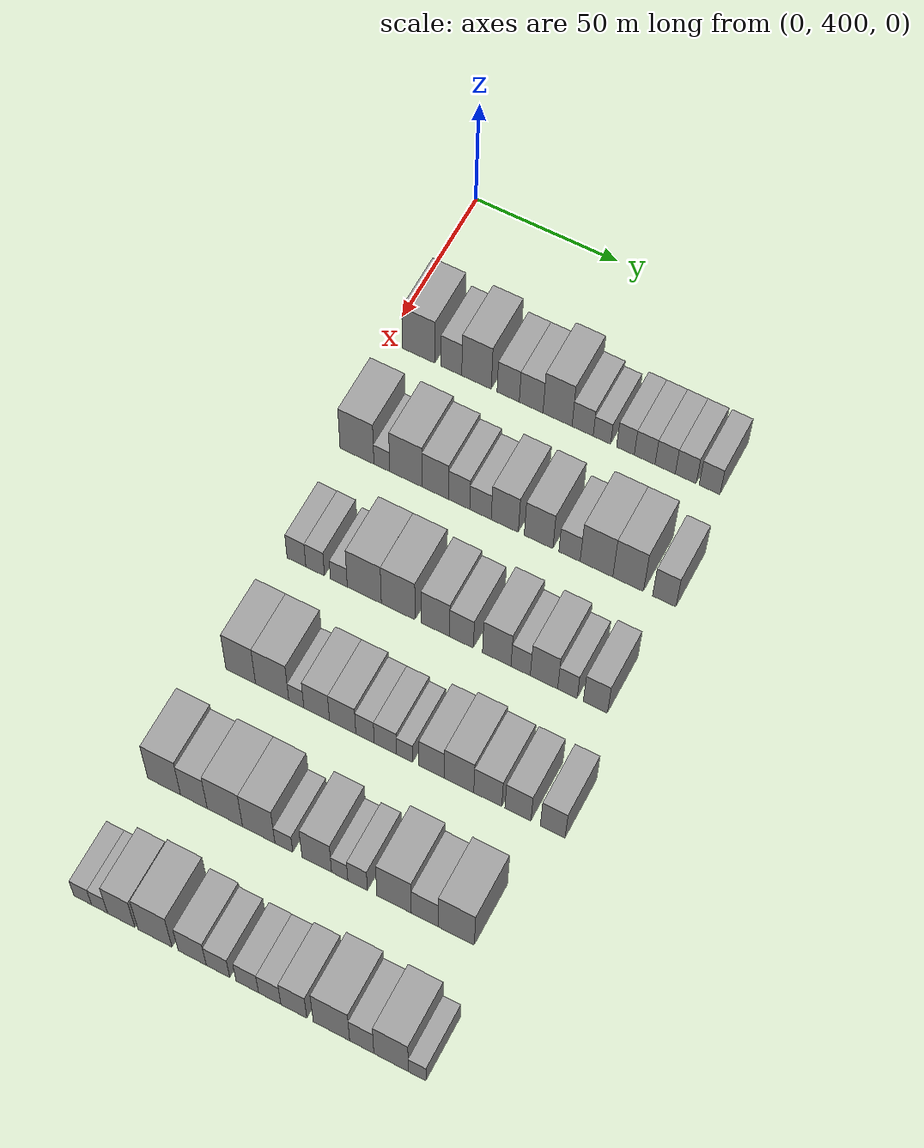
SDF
<sdf version="1.6">
 <world name="default">
  <model name="building_118">
   <static>1</static>
   <pose>50.0000 411.1367 0 0.000000 0.000000 0.000000</pose>
   <link name="link">
    <pose>0 0 12.00 0 0 0</pose>
    <collision name="collision"><geometry><box><size>20.0000 11.4746 24.0000</size></box></geometry></collision>
    <visual name="visual">
     <cast_shadows>0</cast_shadows>
     <geometry><box><size>20.0000 11.4746 24.0000</size></box></geometry>
     <material>
      <script>
       <uri>model://grey_wall/materials/scripts</uri>
       <uri>model://grey_wall/materials/textures</uri>
       <name>vrc/grey_wall</name>
      </script>
     </material>
    </visual>
   </link>
  </model>
  <model name="building_119">
   <static>1</static>
   <pose>50.0000 422.5371 0 0.000000 0.000000 0.000000</pose>
   <link name="link">
    <pose>0 0 9.00 0 0 0</pose>
    <collision name="collision"><geometry><box><size>20.0000 7.3262 18.0000</size></box></geometry></collision>
    <visual name="visual">
     <cast_shadows>0</cast_shadows>
     <geometry><box><size>20.0000 7.3262 18.0000</size></box></geometry>
     <material>
      <script>
       <uri>model://grey_wall/materials/scripts</uri>
       <uri>model://grey_wall/materials/textures</uri>
       <name>vrc/grey_wall</name>
      </script>
     </material>
    </visual>
   </link>
  </model>
  <model name="building_120">
   <static>1</static>
   <pose>50.0000 431.3354 0 0.000000 0.000000 0.000000</pose>
   <link name="link">
    <pose>0 0 12.00 0 0 0</pose>
    <collision name="collision"><geometry><box><size>20.0000 10.2705 24.0000</size></box></geometry></collision>
    <visual name="visual">
     <cast_shadows>0</cast_shadows>
     <geometry><box><size>20.0000 10.2705 24.0000</size></box></geometry>
     <material>
      <script>
       <uri>model://grey_wall/materials/scripts</uri>
       <uri>model://grey_wall/materials/textures</uri>
       <name>vrc/grey_wall</name>
      </script>
     </material>
    </visual>
   </link>
  </model>
  <model name="building_121">
   <static>1</static>
   <pose>50.0000 442.3134 0 0.000000 0.000000 0.000000</pose>
   <link name="link">
    <pose>0 0 9.00 0 0 0</pose>
    <collision name="collision"><geometry><box><size>20.0000 7.6854 18.0000</size></box></geometry></collision>
    <visual name="visual">
     <cast_shadows>0</cast_shadows>
     <geometry><box><size>20.0000 7.6854 18.0000</size></box></geometry>
     <material>
      <script>
       <uri>model://grey_wall/materials/scripts</uri>
       <uri>model://grey_wall/materials/textures</uri>
       <name>vrc/grey_wall</name>
      </script>
     </material>
    </visual>
   </link>
  </model>
  <model name="building_122">
   <static>1</static>
   <pose>50.0000 450.2331 0 0.000000 0.000000 0.000000</pose>
   <link name="link">
    <pose>0 0 9.00 0 0 0</pose>
    <collision name="collision"><geometry><box><size>20.0000 8.1539 18.0000</size></box></geometry></collision>
    <visual name="visual">
     <cast_shadows>0</cast_shadows>
     <geometry><box><size>20.0000 8.1539 18.0000</size></box></geometry>
     <material>
      <script>
       <uri>model://grey_wall/materials/scripts</uri>
       <uri>model://grey_wall/materials/textures</uri>
       <name>vrc/grey_wall</name>
      </script>
     </material>
    </visual>
   </link>
  </model>
  <model name="building_123">
   <static>1</static>
   <pose>50.0000 459.2858 0 0.000000 0.000000 0.000000</pose>
   <link name="link">
    <pose>0 0 12.00 0 0 0</pose>
    <collision name="collision"><geometry><box><size>20.0000 9.9516 24.0000</size></box></geometry></collision>
    <visual name="visual">
     <cast_shadows>0</cast_shadows>
     <geometry><box><size>20.0000 9.9516 24.0000</size></box></geometry>
     <material>
      <script>
       <uri>model://grey_wall/materials/scripts</uri>
       <uri>model://grey_wall/materials/textures</uri>
       <name>vrc/grey_wall</name>
      </script>
     </material>
    </visual>
   </link>
  </model>
  <model name="building_124">
   <static>1</static>
   <pose>50.0000 467.8627 0 0.000000 0.000000 0.000000</pose>
   <link name="link">
    <pose>0 0 7.50 0 0 0</pose>
    <collision name="collision"><geometry><box><size>20.0000 7.2021 15.0000</size></box></geometry></collision>
    <visual name="visual">
     <cast_shadows>0</cast_shadows>
     <geometry><box><size>20.0000 7.2021 15.0000</size></box></geometry>
     <material>
      <script>
       <uri>model://grey_wall/materials/scripts</uri>
       <uri>model://grey_wall/materials/textures</uri>
       <name>vrc/grey_wall</name>
      </script>
     </material>
    </visual>
   </link>
  </model>
  <model name="building_125">
   <static>1</static>
   <pose>50.0000 474.4332 0 0.000000 0.000000 0.000000</pose>
   <link name="link">
    <pose>0 0 6.00 0 0 0</pose>
    <collision name="collision"><geometry><box><size>20.0000 5.9390 12.0000</size></box></geometry></collision>
    <visual name="visual">
     <cast_shadows>0</cast_shadows>
     <geometry><box><size>20.0000 5.9390 12.0000</size></box></geometry>
     <material>
      <script>
       <uri>model://grey_wall/materials/scripts</uri>
       <uri>model://grey_wall/materials/textures</uri>
       <name>vrc/grey_wall</name>
      </script>
     </material>
    </visual>
   </link>
  </model>
  <model name="building_126">
   <static>1</static>
   <pose>50.0000 482.4028 0 0.000000 0.000000 0.000000</pose>
   <link name="link">
    <pose>0 0 7.50 0 0 0</pose>
    <collision name="collision"><geometry><box><size>20.0000 6.0003 15.0000</size></box></geometry></collision>
    <visual name="visual">
     <cast_shadows>0</cast_shadows>
     <geometry><box><size>20.0000 6.0003 15.0000</size></box></geometry>
     <material>
      <script>
       <uri>model://grey_wall/materials/scripts</uri>
       <uri>model://grey_wall/materials/textures</uri>
       <name>vrc/grey_wall</name>
      </script>
     </material>
    </visual>
   </link>
  </model>
  <model name="building_127">
   <static>1</static>
   <pose>50.0000 488.8946 0 0.000000 0.000000 0.000000</pose>
   <link name="link">
    <pose>0 0 7.50 0 0 0</pose>
    <collision name="collision"><geometry><box><size>20.0000 6.9833 15.0000</size></box></geometry></collision>
    <visual name="visual">
     <cast_shadows>0</cast_shadows>
     <geometry><box><size>20.0000 6.9833 15.0000</size></box></geometry>
     <material>
      <script>
       <uri>model://grey_wall/materials/scripts</uri>
       <uri>model://grey_wall/materials/textures</uri>
       <name>vrc/grey_wall</name>
      </script>
     </material>
    </visual>
   </link>
  </model>
  <model name="building_128">
   <static>1</static>
   <pose>50.0000 495.7840 0 0.000000 0.000000 0.000000</pose>
   <link name="link">
    <pose>0 0 7.50 0 0 0</pose>
    <collision name="collision"><geometry><box><size>20.0000 6.7955 15.0000</size></box></geometry></collision>
    <visual name="visual">
     <cast_shadows>0</cast_shadows>
     <geometry><box><size>20.0000 6.7955 15.0000</size></box></geometry>
     <material>
      <script>
       <uri>model://grey_wall/materials/scripts</uri>
       <uri>model://grey_wall/materials/textures</uri>
       <name>vrc/grey_wall</name>
      </script>
     </material>
    </visual>
   </link>
  </model>
  <model name="building_129">
   <static>1</static>
   <pose>50.0000 502.6778 0 0.000000 0.000000 0.000000</pose>
   <link name="link">
    <pose>0 0 7.50 0 0 0</pose>
    <collision name="collision"><geometry><box><size>20.0000 6.9922 15.0000</size></box></geometry></collision>
    <visual name="visual">
     <cast_shadows>0</cast_shadows>
     <geometry><box><size>20.0000 6.9922 15.0000</size></box></geometry>
     <material>
      <script>
       <uri>model://grey_wall/materials/scripts</uri>
       <uri>model://grey_wall/materials/textures</uri>
       <name>vrc/grey_wall</name>
      </script>
     </material>
    </visual>
   </link>
  </model>
  <model name="building_130">
   <static>1</static>
   <pose>50.0000 510.6487 0 0.000000 0.000000 0.000000</pose>
   <link name="link">
    <pose>0 0 7.50 0 0 0</pose>
    <collision name="collision"><geometry><box><size>20.0000 6.9495 15.0000</size></box></geometry></collision>
    <visual name="visual">
     <cast_shadows>0</cast_shadows>
     <geometry><box><size>20.0000 6.9495 15.0000</size></box></geometry>
     <material>
      <script>
       <uri>model://grey_wall/materials/scripts</uri>
       <uri>model://grey_wall/materials/textures</uri>
       <name>vrc/grey_wall</name>
      </script>
     </material>
    </visual>
   </link>
  </model>
  <model name="building_258">
   <static>1</static>
   <pose>90.0000 411.3730 0 0.000000 0.000000 0.000000</pose>
   <link name="link">
    <pose>0 0 12.00 0 0 0</pose>
    <collision name="collision"><geometry><box><size>20.0000 11.7048 24.0000</size></box></geometry></collision>
    <visual name="visual">
     <cast_shadows>0</cast_shadows>
     <geometry><box><size>20.0000 11.7048 24.0000</size></box></geometry>
     <material>
      <script>
       <uri>model://grey_wall/materials/scripts</uri>
       <uri>model://grey_wall/materials/textures</uri>
       <name>vrc/grey_wall</name>
      </script>
     </material>
    </visual>
   </link>
  </model>
  <model name="building_259">
   <static>1</static>
   <pose>90.0000 419.9454 0 0.000000 0.000000 0.000000</pose>
   <link name="link">
    <pose>0 0 6.00 0 0 0</pose>
    <collision name="collision"><geometry><box><size>20.0000 5.4400 12.0000</size></box></geometry></collision>
    <visual name="visual">
     <cast_shadows>0</cast_shadows>
     <geometry><box><size>20.0000 5.4400 12.0000</size></box></geometry>
     <material>
      <script>
       <uri>model://grey_wall/materials/scripts</uri>
       <uri>model://grey_wall/materials/textures</uri>
       <name>vrc/grey_wall</name>
      </script>
     </material>
    </visual>
   </link>
  </model>
  <model name="building_260">
   <static>1</static>
   <pose>90.0000 428.1868 0 0.000000 0.000000 0.000000</pose>
   <link name="link">
    <pose>0 0 12.00 0 0 0</pose>
    <collision name="collision"><geometry><box><size>20.0000 11.0427 24.0000</size></box></geometry></collision>
    <visual name="visual">
     <cast_shadows>0</cast_shadows>
     <geometry><box><size>20.0000 11.0427 24.0000</size></box></geometry>
     <material>
      <script>
       <uri>model://grey_wall/materials/scripts</uri>
       <uri>model://grey_wall/materials/textures</uri>
       <name>vrc/grey_wall</name>
      </script>
     </material>
    </visual>
   </link>
  </model>
  <model name="building_261">
   <static>1</static>
   <pose>90.0000 438.2460 0 0.000000 0.000000 0.000000</pose>
   <link name="link">
    <pose>0 0 10.50 0 0 0</pose>
    <collision name="collision"><geometry><box><size>20.0000 9.0757 21.0000</size></box></geometry></collision>
    <visual name="visual">
     <cast_shadows>0</cast_shadows>
     <geometry><box><size>20.0000 9.0757 21.0000</size></box></geometry>
     <material>
      <script>
       <uri>model://grey_wall/materials/scripts</uri>
       <uri>model://grey_wall/materials/textures</uri>
       <name>vrc/grey_wall</name>
      </script>
     </material>
    </visual>
   </link>
  </model>
  <model name="building_262">
   <static>1</static>
   <pose>90.0000 446.3925 0 0.000000 0.000000 0.000000</pose>
   <link name="link">
    <pose>0 0 9.00 0 0 0</pose>
    <collision name="collision"><geometry><box><size>20.0000 7.2173 18.0000</size></box></geometry></collision>
    <visual name="visual">
     <cast_shadows>0</cast_shadows>
     <geometry><box><size>20.0000 7.2173 18.0000</size></box></geometry>
     <material>
      <script>
       <uri>model://grey_wall/materials/scripts</uri>
       <uri>model://grey_wall/materials/textures</uri>
       <name>vrc/grey_wall</name>
      </script>
     </material>
    </visual>
   </link>
  </model>
  <model name="building_263">
   <static>1</static>
   <pose>90.0000 453.6356 0 0.000000 0.000000 0.000000</pose>
   <link name="link">
    <pose>0 0 7.50 0 0 0</pose>
    <collision name="collision"><geometry><box><size>20.0000 7.2689 15.0000</size></box></geometry></collision>
    <visual name="visual">
     <cast_shadows>0</cast_shadows>
     <geometry><box><size>20.0000 7.2689 15.0000</size></box></geometry>
     <material>
      <script>
       <uri>model://grey_wall/materials/scripts</uri>
       <uri>model://grey_wall/materials/textures</uri>
       <name>vrc/grey_wall</name>
      </script>
     </material>
    </visual>
   </link>
  </model>
  <model name="building_264">
   <static>1</static>
   <pose>90.0000 461.8416 0 0.000000 0.000000 0.000000</pose>
   <link name="link">
    <pose>0 0 10.50 0 0 0</pose>
    <collision name="collision"><geometry><box><size>20.0000 9.1431 21.0000</size></box></geometry></collision>
    <visual name="visual">
     <cast_shadows>0</cast_shadows>
     <geometry><box><size>20.0000 9.1431 21.0000</size></box></geometry>
     <material>
      <script>
       <uri>model://grey_wall/materials/scripts</uri>
       <uri>model://grey_wall/materials/textures</uri>
       <name>vrc/grey_wall</name>
      </script>
     </material>
    </visual>
   </link>
  </model>
  <model name="building_265">
   <static>1</static>
   <pose>90.0000 473.2131 0 0.000000 0.000000 0.000000</pose>
   <link name="link">
    <pose>0 0 10.50 0 0 0</pose>
    <collision name="collision"><geometry><box><size>20.0000 9.5998 21.0000</size></box></geometry></collision>
    <visual name="visual">
     <cast_shadows>0</cast_shadows>
     <geometry><box><size>20.0000 9.5998 21.0000</size></box></geometry>
     <material>
      <script>
       <uri>model://grey_wall/materials/scripts</uri>
       <uri>model://grey_wall/materials/textures</uri>
       <name>vrc/grey_wall</name>
      </script>
     </material>
    </visual>
   </link>
  </model>
  <model name="building_266">
   <static>1</static>
   <pose>90.0000 483.5444 0 0.000000 0.000000 0.000000</pose>
   <link name="link">
    <pose>0 0 7.50 0 0 0</pose>
    <collision name="collision"><geometry><box><size>20.0000 7.0628 15.0000</size></box></geometry></collision>
    <visual name="visual">
     <cast_shadows>0</cast_shadows>
     <geometry><box><size>20.0000 7.0628 15.0000</size></box></geometry>
     <material>
      <script>
       <uri>model://grey_wall/materials/scripts</uri>
       <uri>model://grey_wall/materials/textures</uri>
       <name>vrc/grey_wall</name>
      </script>
     </material>
    </visual>
   </link>
  </model>
  <model name="building_267">
   <static>1</static>
   <pose>90.0000 492.4960 0 0.000000 0.000000 0.000000</pose>
   <link name="link">
    <pose>0 0 12.00 0 0 0</pose>
    <collision name="collision"><geometry><box><size>20.0000 10.8405 24.0000</size></box></geometry></collision>
    <visual name="visual">
     <cast_shadows>0</cast_shadows>
     <geometry><box><size>20.0000 10.8405 24.0000</size></box></geometry>
     <material>
      <script>
       <uri>model://grey_wall/materials/scripts</uri>
       <uri>model://grey_wall/materials/textures</uri>
       <name>vrc/grey_wall</name>
      </script>
     </material>
    </visual>
   </link>
  </model>
  <model name="building_268">
   <static>1</static>
   <pose>90.0000 502.9726 0 0.000000 0.000000 0.000000</pose>
   <link name="link">
    <pose>0 0 12.00 0 0 0</pose>
    <collision name="collision"><geometry><box><size>20.0000 10.1127 24.0000</size></box></geometry></collision>
    <visual name="visual">
     <cast_shadows>0</cast_shadows>
     <geometry><box><size>20.0000 10.1127 24.0000</size></box></geometry>
     <material>
      <script>
       <uri>model://grey_wall/materials/scripts</uri>
       <uri>model://grey_wall/materials/textures</uri>
       <name>vrc/grey_wall</name>
      </script>
     </material>
    </visual>
   </link>
  </model>
  <model name="building_269">
   <static>1</static>
   <pose>90.0000 514.8615 0 0.000000 0.000000 0.000000</pose>
   <link name="link">
    <pose>0 0 9.00 0 0 0</pose>
    <collision name="collision"><geometry><box><size>20.0000 7.6652 18.0000</size></box></geometry></collision>
    <visual name="visual">
     <cast_shadows>0</cast_shadows>
     <geometry><box><size>20.0000 7.6652 18.0000</size></box></geometry>
     <material>
      <script>
       <uri>model://grey_wall/materials/scripts</uri>
       <uri>model://grey_wall/materials/textures</uri>
       <name>vrc/grey_wall</name>
      </script>
     </material>
    </visual>
   </link>
  </model>
  <model name="building_386">
   <static>1</static>
   <pose>130.0000 412.8535 0 0.000000 0.000000 0.000000</pose>
   <link name="link">
    <pose>0 0 7.50 0 0 0</pose>
    <collision name="collision"><geometry><box><size>20.0000 6.3970 15.0000</size></box></geometry></collision>
    <visual name="visual">
     <cast_shadows>0</cast_shadows>
     <geometry><box><size>20.0000 6.3970 15.0000</size></box></geometry>
     <material>
      <script>
       <uri>model://grey_wall/materials/scripts</uri>
       <uri>model://grey_wall/materials/textures</uri>
       <name>vrc/grey_wall</name>
      </script>
     </material>
    </visual>
   </link>
  </model>
  <model name="building_387">
   <static>1</static>
   <pose>130.0000 419.2220 0 0.000000 0.000000 0.000000</pose>
   <link name="link">
    <pose>0 0 7.50 0 0 0</pose>
    <collision name="collision"><geometry><box><size>20.0000 6.3401 15.0000</size></box></geometry></collision>
    <visual name="visual">
     <cast_shadows>0</cast_shadows>
     <geometry><box><size>20.0000 6.3401 15.0000</size></box></geometry>
     <material>
      <script>
       <uri>model://grey_wall/materials/scripts</uri>
       <uri>model://grey_wall/materials/textures</uri>
       <name>vrc/grey_wall</name>
      </script>
     </material>
    </visual>
   </link>
  </model>
  <model name="building_388">
   <static>1</static>
   <pose>130.0000 427.2524 0 0.000000 0.000000 0.000000</pose>
   <link name="link">
    <pose>0 0 6.00 0 0 0</pose>
    <collision name="collision"><geometry><box><size>20.0000 5.7208 12.0000</size></box></geometry></collision>
    <visual name="visual">
     <cast_shadows>0</cast_shadows>
     <geometry><box><size>20.0000 5.7208 12.0000</size></box></geometry>
     <material>
      <script>
       <uri>model://grey_wall/materials/scripts</uri>
       <uri>model://grey_wall/materials/textures</uri>
       <name>vrc/grey_wall</name>
      </script>
     </material>
    </visual>
   </link>
  </model>
  <model name="building_389">
   <static>1</static>
   <pose>130.0000 435.8497 0 0.000000 0.000000 0.000000</pose>
   <link name="link">
    <pose>0 0 12.00 0 0 0</pose>
    <collision name="collision"><geometry><box><size>20.0000 11.4738 24.0000</size></box></geometry></collision>
    <visual name="visual">
     <cast_shadows>0</cast_shadows>
     <geometry><box><size>20.0000 11.4738 24.0000</size></box></geometry>
     <material>
      <script>
       <uri>model://grey_wall/materials/scripts</uri>
       <uri>model://grey_wall/materials/textures</uri>
       <name>vrc/grey_wall</name>
      </script>
     </material>
    </visual>
   </link>
  </model>
  <model name="building_390">
   <static>1</static>
   <pose>130.0000 447.2169 0 0.000000 0.000000 0.000000</pose>
   <link name="link">
    <pose>0 0 12.00 0 0 0</pose>
    <collision name="collision"><geometry><box><size>20.0000 11.2604 24.0000</size></box></geometry></collision>
    <visual name="visual">
     <cast_shadows>0</cast_shadows>
     <geometry><box><size>20.0000 11.2604 24.0000</size></box></geometry>
     <material>
      <script>
       <uri>model://grey_wall/materials/scripts</uri>
       <uri>model://grey_wall/materials/textures</uri>
       <name>vrc/grey_wall</name>
      </script>
     </material>
    </visual>
   </link>
  </model>
  <model name="building_391">
   <static>1</static>
   <pose>130.0000 459.5739 0 0.000000 0.000000 0.000000</pose>
   <link name="link">
    <pose>0 0 10.50 0 0 0</pose>
    <collision name="collision"><geometry><box><size>20.0000 9.4536 21.0000</size></box></geometry></collision>
    <visual name="visual">
     <cast_shadows>0</cast_shadows>
     <geometry><box><size>20.0000 9.4536 21.0000</size></box></geometry>
     <material>
      <script>
       <uri>model://grey_wall/materials/scripts</uri>
       <uri>model://grey_wall/materials/textures</uri>
       <name>vrc/grey_wall</name>
      </script>
     </material>
    </visual>
   </link>
  </model>
  <model name="building_392">
   <static>1</static>
   <pose>130.0000 468.2665 0 0.000000 0.000000 0.000000</pose>
   <link name="link">
    <pose>0 0 9.00 0 0 0</pose>
    <collision name="collision"><geometry><box><size>20.0000 7.9317 18.0000</size></box></geometry></collision>
    <visual name="visual">
     <cast_shadows>0</cast_shadows>
     <geometry><box><size>20.0000 7.9317 18.0000</size></box></geometry>
     <material>
      <script>
       <uri>model://grey_wall/materials/scripts</uri>
       <uri>model://grey_wall/materials/textures</uri>
       <name>vrc/grey_wall</name>
      </script>
     </material>
    </visual>
   </link>
  </model>
  <model name="building_393">
   <static>1</static>
   <pose>130.0000 479.9217 0 0.000000 0.000000 0.000000</pose>
   <link name="link">
    <pose>0 0 10.50 0 0 0</pose>
    <collision name="collision"><geometry><box><size>20.0000 9.3787 21.0000</size></box></geometry></collision>
    <visual name="visual">
     <cast_shadows>0</cast_shadows>
     <geometry><box><size>20.0000 9.3787 21.0000</size></box></geometry>
     <material>
      <script>
       <uri>model://grey_wall/materials/scripts</uri>
       <uri>model://grey_wall/materials/textures</uri>
       <name>vrc/grey_wall</name>
      </script>
     </material>
    </visual>
   </link>
  </model>
  <model name="building_394">
   <static>1</static>
   <pose>130.0000 487.7719 0 0.000000 0.000000 0.000000</pose>
   <link name="link">
    <pose>0 0 7.50 0 0 0</pose>
    <collision name="collision"><geometry><box><size>20.0000 6.3217 15.0000</size></box></geometry></collision>
    <visual name="visual">
     <cast_shadows>0</cast_shadows>
     <geometry><box><size>20.0000 6.3217 15.0000</size></box></geometry>
     <material>
      <script>
       <uri>model://grey_wall/materials/scripts</uri>
       <uri>model://grey_wall/materials/textures</uri>
       <name>vrc/grey_wall</name>
      </script>
     </material>
    </visual>
   </link>
  </model>
  <model name="building_395">
   <static>1</static>
   <pose>130.0000 495.3944 0 0.000000 0.000000 0.000000</pose>
   <link name="link">
    <pose>0 0 10.50 0 0 0</pose>
    <collision name="collision"><geometry><box><size>20.0000 8.9233 21.0000</size></box></geometry></collision>
    <visual name="visual">
     <cast_shadows>0</cast_shadows>
     <geometry><box><size>20.0000 8.9233 21.0000</size></box></geometry>
     <material>
      <script>
       <uri>model://grey_wall/materials/scripts</uri>
       <uri>model://grey_wall/materials/textures</uri>
       <name>vrc/grey_wall</name>
      </script>
     </material>
    </visual>
   </link>
  </model>
  <model name="building_396">
   <static>1</static>
   <pose>130.0000 503.0175 0 0.000000 0.000000 0.000000</pose>
   <link name="link">
    <pose>0 0 7.50 0 0 0</pose>
    <collision name="collision"><geometry><box><size>20.0000 6.3229 15.0000</size></box></geometry></collision>
    <visual name="visual">
     <cast_shadows>0</cast_shadows>
     <geometry><box><size>20.0000 6.3229 15.0000</size></box></geometry>
     <material>
      <script>
       <uri>model://grey_wall/materials/scripts</uri>
       <uri>model://grey_wall/materials/textures</uri>
       <name>vrc/grey_wall</name>
      </script>
     </material>
    </visual>
   </link>
  </model>
  <model name="building_397">
   <static>1</static>
   <pose>130.0000 512.0896 0 0.000000 0.000000 0.000000</pose>
   <link name="link">
    <pose>0 0 9.00 0 0 0</pose>
    <collision name="collision"><geometry><box><size>20.0000 7.8212 18.0000</size></box></geometry></collision>
    <visual name="visual">
     <cast_shadows>0</cast_shadows>
     <geometry><box><size>20.0000 7.8212 18.0000</size></box></geometry>
     <material>
      <script>
       <uri>model://grey_wall/materials/scripts</uri>
       <uri>model://grey_wall/materials/textures</uri>
       <name>vrc/grey_wall</name>
      </script>
     </material>
    </visual>
   </link>
  </model>
  <model name="building_527">
   <static>1</static>
   <pose>170.0000 416.8096 0 0.000000 0.000000 0.000000</pose>
   <link name="link">
    <pose>0 0 12.00 0 0 0</pose>
    <collision name="collision"><geometry><box><size>20.0000 9.9210 24.0000</size></box></geometry></collision>
    <visual name="visual">
     <cast_shadows>0</cast_shadows>
     <geometry><box><size>20.0000 9.9210 24.0000</size></box></geometry>
     <material>
      <script>
       <uri>model://grey_wall/materials/scripts</uri>
       <uri>model://grey_wall/materials/textures</uri>
       <name>vrc/grey_wall</name>
      </script>
     </material>
    </visual>
   </link>
  </model>
  <model name="building_528">
   <static>1</static>
   <pose>170.0000 427.3134 0 0.000000 0.000000 0.000000</pose>
   <link name="link">
    <pose>0 0 12.00 0 0 0</pose>
    <collision name="collision"><geometry><box><size>20.0000 11.0865 24.0000</size></box></geometry></collision>
    <visual name="visual">
     <cast_shadows>0</cast_shadows>
     <geometry><box><size>20.0000 11.0865 24.0000</size></box></geometry>
     <material>
      <script>
       <uri>model://grey_wall/materials/scripts</uri>
       <uri>model://grey_wall/materials/textures</uri>
       <name>vrc/grey_wall</name>
      </script>
     </material>
    </visual>
   </link>
  </model>
  <model name="building_529">
   <static>1</static>
   <pose>170.0000 435.3536 0 0.000000 0.000000 0.000000</pose>
   <link name="link">
    <pose>0 0 6.00 0 0 0</pose>
    <collision name="collision"><geometry><box><size>20.0000 4.9940 12.0000</size></box></geometry></collision>
    <visual name="visual">
     <cast_shadows>0</cast_shadows>
     <geometry><box><size>20.0000 4.9940 12.0000</size></box></geometry>
     <material>
      <script>
       <uri>model://grey_wall/materials/scripts</uri>
       <uri>model://grey_wall/materials/textures</uri>
       <name>vrc/grey_wall</name>
      </script>
     </material>
    </visual>
   </link>
  </model>
  <model name="building_530">
   <static>1</static>
   <pose>170.0000 442.0939 0 0.000000 0.000000 0.000000</pose>
   <link name="link">
    <pose>0 0 9.00 0 0 0</pose>
    <collision name="collision"><geometry><box><size>20.0000 8.4865 18.0000</size></box></geometry></collision>
    <visual name="visual">
     <cast_shadows>0</cast_shadows>
     <geometry><box><size>20.0000 8.4865 18.0000</size></box></geometry>
     <material>
      <script>
       <uri>model://grey_wall/materials/scripts</uri>
       <uri>model://grey_wall/materials/textures</uri>
       <name>vrc/grey_wall</name>
      </script>
     </material>
    </visual>
   </link>
  </model>
  <model name="building_531">
   <static>1</static>
   <pose>170.0000 450.6701 0 0.000000 0.000000 0.000000</pose>
   <link name="link">
    <pose>0 0 9.00 0 0 0</pose>
    <collision name="collision"><geometry><box><size>20.0000 8.6661 18.0000</size></box></geometry></collision>
    <visual name="visual">
     <cast_shadows>0</cast_shadows>
     <geometry><box><size>20.0000 8.6661 18.0000</size></box></geometry>
     <material>
      <script>
       <uri>model://grey_wall/materials/scripts</uri>
       <uri>model://grey_wall/materials/textures</uri>
       <name>vrc/grey_wall</name>
      </script>
     </material>
    </visual>
   </link>
  </model>
  <model name="building_532">
   <static>1</static>
   <pose>170.0000 458.0155 0 0.000000 0.000000 0.000000</pose>
   <link name="link">
    <pose>0 0 7.50 0 0 0</pose>
    <collision name="collision"><geometry><box><size>20.0000 6.0246 15.0000</size></box></geometry></collision>
    <visual name="visual">
     <cast_shadows>0</cast_shadows>
     <geometry><box><size>20.0000 6.0246 15.0000</size></box></geometry>
     <material>
      <script>
       <uri>model://grey_wall/materials/scripts</uri>
       <uri>model://grey_wall/materials/textures</uri>
       <name>vrc/grey_wall</name>
      </script>
     </material>
    </visual>
   </link>
  </model>
  <model name="building_533">
   <static>1</static>
   <pose>170.0000 464.6826 0 0.000000 0.000000 0.000000</pose>
   <link name="link">
    <pose>0 0 7.50 0 0 0</pose>
    <collision name="collision"><geometry><box><size>20.0000 7.3096 15.0000</size></box></geometry></collision>
    <visual name="visual">
     <cast_shadows>0</cast_shadows>
     <geometry><box><size>20.0000 7.3096 15.0000</size></box></geometry>
     <material>
      <script>
       <uri>model://grey_wall/materials/scripts</uri>
       <uri>model://grey_wall/materials/textures</uri>
       <name>vrc/grey_wall</name>
      </script>
     </material>
    </visual>
   </link>
  </model>
  <model name="building_534">
   <static>1</static>
   <pose>170.0000 470.9745 0 0.000000 0.000000 0.000000</pose>
   <link name="link">
    <pose>0 0 6.00 0 0 0</pose>
    <collision name="collision"><geometry><box><size>20.0000 5.2743 12.0000</size></box></geometry></collision>
    <visual name="visual">
     <cast_shadows>0</cast_shadows>
     <geometry><box><size>20.0000 5.2743 12.0000</size></box></geometry>
     <material>
      <script>
       <uri>model://grey_wall/materials/scripts</uri>
       <uri>model://grey_wall/materials/textures</uri>
       <name>vrc/grey_wall</name>
      </script>
     </material>
    </visual>
   </link>
  </model>
  <model name="building_535">
   <static>1</static>
   <pose>170.0000 479.7203 0 0.000000 0.000000 0.000000</pose>
   <link name="link">
    <pose>0 0 9.00 0 0 0</pose>
    <collision name="collision"><geometry><box><size>20.0000 8.2173 18.0000</size></box></geometry></collision>
    <visual name="visual">
     <cast_shadows>0</cast_shadows>
     <geometry><box><size>20.0000 8.2173 18.0000</size></box></geometry>
     <material>
      <script>
       <uri>model://grey_wall/materials/scripts</uri>
       <uri>model://grey_wall/materials/textures</uri>
       <name>vrc/grey_wall</name>
      </script>
     </material>
    </visual>
   </link>
  </model>
  <model name="building_536">
   <static>1</static>
   <pose>170.0000 488.5739 0 0.000000 0.000000 0.000000</pose>
   <link name="link">
    <pose>0 0 10.50 0 0 0</pose>
    <collision name="collision"><geometry><box><size>20.0000 9.4898 21.0000</size></box></geometry></collision>
    <visual name="visual">
     <cast_shadows>0</cast_shadows>
     <geometry><box><size>20.0000 9.4898 21.0000</size></box></geometry>
     <material>
      <script>
       <uri>model://grey_wall/materials/scripts</uri>
       <uri>model://grey_wall/materials/textures</uri>
       <name>vrc/grey_wall</name>
      </script>
     </material>
    </visual>
   </link>
  </model>
  <model name="building_537">
   <static>1</static>
   <pose>170.0000 497.8175 0 0.000000 0.000000 0.000000</pose>
   <link name="link">
    <pose>0 0 9.00 0 0 0</pose>
    <collision name="collision"><geometry><box><size>20.0000 8.9975 18.0000</size></box></geometry></collision>
    <visual name="visual">
     <cast_shadows>0</cast_shadows>
     <geometry><box><size>20.0000 8.9975 18.0000</size></box></geometry>
     <material>
      <script>
       <uri>model://grey_wall/materials/scripts</uri>
       <uri>model://grey_wall/materials/textures</uri>
       <name>vrc/grey_wall</name>
      </script>
     </material>
    </visual>
   </link>
  </model>
  <model name="building_538">
   <static>1</static>
   <pose>170.0000 507.4683 0 0.000000 0.000000 0.000000</pose>
   <link name="link">
    <pose>0 0 9.00 0 0 0</pose>
    <collision name="collision"><geometry><box><size>20.0000 8.3039 18.0000</size></box></geometry></collision>
    <visual name="visual">
     <cast_shadows>0</cast_shadows>
     <geometry><box><size>20.0000 8.3039 18.0000</size></box></geometry>
     <material>
      <script>
       <uri>model://grey_wall/materials/scripts</uri>
       <uri>model://grey_wall/materials/textures</uri>
       <name>vrc/grey_wall</name>
      </script>
     </material>
    </visual>
   </link>
  </model>
  <model name="building_539">
   <static>1</static>
   <pose>170.0000 518.5411 0 0.000000 0.000000 0.000000</pose>
   <link name="link">
    <pose>0 0 9.00 0 0 0</pose>
    <collision name="collision"><geometry><box><size>20.0000 7.8417 18.0000</size></box></geometry></collision>
    <visual name="visual">
     <cast_shadows>0</cast_shadows>
     <geometry><box><size>20.0000 7.8417 18.0000</size></box></geometry>
     <material>
      <script>
       <uri>model://grey_wall/materials/scripts</uri>
       <uri>model://grey_wall/materials/textures</uri>
       <name>vrc/grey_wall</name>
      </script>
     </material>
    </visual>
   </link>
  </model>
  <model name="building_664">
   <static>1</static>
   <pose>210.0000 414.6225 0 0.000000 0.000000 0.000000</pose>
   <link name="link">
    <pose>0 0 12.00 0 0 0</pose>
    <collision name="collision"><geometry><box><size>20.0000 10.8580 24.0000</size></box></geometry></collision>
    <visual name="visual">
     <cast_shadows>0</cast_shadows>
     <geometry><box><size>20.0000 10.8580 24.0000</size></box></geometry>
     <material>
      <script>
       <uri>model://grey_wall/materials/scripts</uri>
       <uri>model://grey_wall/materials/textures</uri>
       <name>vrc/grey_wall</name>
      </script>
     </material>
    </visual>
   </link>
  </model>
  <model name="building_665">
   <static>1</static>
   <pose>210.0000 424.4581 0 0.000000 0.000000 0.000000</pose>
   <link name="link">
    <pose>0 0 10.50 0 0 0</pose>
    <collision name="collision"><geometry><box><size>20.0000 8.8132 21.0000</size></box></geometry></collision>
    <visual name="visual">
     <cast_shadows>0</cast_shadows>
     <geometry><box><size>20.0000 8.8132 21.0000</size></box></geometry>
     <material>
      <script>
       <uri>model://grey_wall/materials/scripts</uri>
       <uri>model://grey_wall/materials/textures</uri>
       <name>vrc/grey_wall</name>
      </script>
     </material>
    </visual>
   </link>
  </model>
  <model name="building_666">
   <static>1</static>
   <pose>210.0000 434.6497 0 0.000000 0.000000 0.000000</pose>
   <link name="link">
    <pose>0 0 12.00 0 0 0</pose>
    <collision name="collision"><geometry><box><size>20.0000 11.5700 24.0000</size></box></geometry></collision>
    <visual name="visual">
     <cast_shadows>0</cast_shadows>
     <geometry><box><size>20.0000 11.5700 24.0000</size></box></geometry>
     <material>
      <script>
       <uri>model://grey_wall/materials/scripts</uri>
       <uri>model://grey_wall/materials/textures</uri>
       <name>vrc/grey_wall</name>
      </script>
     </material>
    </visual>
   </link>
  </model>
  <model name="building_667">
   <static>1</static>
   <pose>210.0000 445.7048 0 0.000000 0.000000 0.000000</pose>
   <link name="link">
    <pose>0 0 12.00 0 0 0</pose>
    <collision name="collision"><geometry><box><size>20.0000 10.5403 24.0000</size></box></geometry></collision>
    <visual name="visual">
     <cast_shadows>0</cast_shadows>
     <geometry><box><size>20.0000 10.5403 24.0000</size></box></geometry>
     <material>
      <script>
       <uri>model://grey_wall/materials/scripts</uri>
       <uri>model://grey_wall/materials/textures</uri>
       <name>vrc/grey_wall</name>
      </script>
     </material>
    </visual>
   </link>
  </model>
  <model name="building_668">
   <static>1</static>
   <pose>210.0000 453.8569 0 0.000000 0.000000 0.000000</pose>
   <link name="link">
    <pose>0 0 6.00 0 0 0</pose>
    <collision name="collision"><geometry><box><size>20.0000 5.7639 12.0000</size></box></geometry></collision>
    <visual name="visual">
     <cast_shadows>0</cast_shadows>
     <geometry><box><size>20.0000 5.7639 12.0000</size></box></geometry>
     <material>
      <script>
       <uri>model://grey_wall/materials/scripts</uri>
       <uri>model://grey_wall/materials/textures</uri>
       <name>vrc/grey_wall</name>
      </script>
     </material>
    </visual>
   </link>
  </model>
  <model name="building_669">
   <static>1</static>
   <pose>210.0000 464.5002 0 0.000000 0.000000 0.000000</pose>
   <link name="link">
    <pose>0 0 10.50 0 0 0</pose>
    <collision name="collision"><geometry><box><size>20.0000 9.5227 21.0000</size></box></geometry></collision>
    <visual name="visual">
     <cast_shadows>0</cast_shadows>
     <geometry><box><size>20.0000 9.5227 21.0000</size></box></geometry>
     <material>
      <script>
       <uri>model://grey_wall/materials/scripts</uri>
       <uri>model://grey_wall/materials/textures</uri>
       <name>vrc/grey_wall</name>
      </script>
     </material>
    </visual>
   </link>
  </model>
  <model name="building_670">
   <static>1</static>
   <pose>210.0000 471.8615 0 0.000000 0.000000 0.000000</pose>
   <link name="link">
    <pose>0 0 6.00 0 0 0</pose>
    <collision name="collision"><geometry><box><size>20.0000 5.1998 12.0000</size></box></geometry></collision>
    <visual name="visual">
     <cast_shadows>0</cast_shadows>
     <geometry><box><size>20.0000 5.1998 12.0000</size></box></geometry>
     <material>
      <script>
       <uri>model://grey_wall/materials/scripts</uri>
       <uri>model://grey_wall/materials/textures</uri>
       <name>vrc/grey_wall</name>
      </script>
     </material>
    </visual>
   </link>
  </model>
  <model name="building_671">
   <static>1</static>
   <pose>210.0000 477.5924 0 0.000000 0.000000 0.000000</pose>
   <link name="link">
    <pose>0 0 7.50 0 0 0</pose>
    <collision name="collision"><geometry><box><size>20.0000 6.2622 15.0000</size></box></geometry></collision>
    <visual name="visual">
     <cast_shadows>0</cast_shadows>
     <geometry><box><size>20.0000 6.2622 15.0000</size></box></geometry>
     <material>
      <script>
       <uri>model://grey_wall/materials/scripts</uri>
       <uri>model://grey_wall/materials/textures</uri>
       <name>vrc/grey_wall</name>
      </script>
     </material>
    </visual>
   </link>
  </model>
  <model name="building_672">
   <static>1</static>
   <pose>210.0000 489.1934 0 0.000000 0.000000 0.000000</pose>
   <link name="link">
    <pose>0 0 12.00 0 0 0</pose>
    <collision name="collision"><geometry><box><size>20.0000 10.9397 24.0000</size></box></geometry></collision>
    <visual name="visual">
     <cast_shadows>0</cast_shadows>
     <geometry><box><size>20.0000 10.9397 24.0000</size></box></geometry>
     <material>
      <script>
       <uri>model://grey_wall/materials/scripts</uri>
       <uri>model://grey_wall/materials/textures</uri>
       <name>vrc/grey_wall</name>
      </script>
     </material>
    </visual>
   </link>
  </model>
  <model name="building_673">
   <static>1</static>
   <pose>210.0000 498.8748 0 0.000000 0.000000 0.000000</pose>
   <link name="link">
    <pose>0 0 9.00 0 0 0</pose>
    <collision name="collision"><geometry><box><size>20.0000 8.4231 18.0000</size></box></geometry></collision>
    <visual name="visual">
     <cast_shadows>0</cast_shadows>
     <geometry><box><size>20.0000 8.4231 18.0000</size></box></geometry>
     <material>
      <script>
       <uri>model://grey_wall/materials/scripts</uri>
       <uri>model://grey_wall/materials/textures</uri>
       <name>vrc/grey_wall</name>
      </script>
     </material>
    </visual>
   </link>
  </model>
  <model name="building_674">
   <static>1</static>
   <pose>210.0000 508.7811 0 0.000000 0.000000 0.000000</pose>
   <link name="link">
    <pose>0 0 12.00 0 0 0</pose>
    <collision name="collision"><geometry><box><size>20.0000 11.3895 24.0000</size></box></geometry></collision>
    <visual name="visual">
     <cast_shadows>0</cast_shadows>
     <geometry><box><size>20.0000 11.3895 24.0000</size></box></geometry>
     <material>
      <script>
       <uri>model://grey_wall/materials/scripts</uri>
       <uri>model://grey_wall/materials/textures</uri>
       <name>vrc/grey_wall</name>
      </script>
     </material>
    </visual>
   </link>
  </model>
  <model name="building_792">
   <static>1</static>
   <pose>250.0000 411.9384 0 0.000000 0.000000 0.000000</pose>
   <link name="link">
    <pose>0 0 6.00 0 0 0</pose>
    <collision name="collision"><geometry><box><size>20.0000 5.7770 12.0000</size></box></geometry></collision>
    <visual name="visual">
     <cast_shadows>0</cast_shadows>
     <geometry><box><size>20.0000 5.7770 12.0000</size></box></geometry>
     <material>
      <script>
       <uri>model://grey_wall/materials/scripts</uri>
       <uri>model://grey_wall/materials/textures</uri>
       <name>vrc/grey_wall</name>
      </script>
     </material>
    </visual>
   </link>
  </model>
  <model name="building_793">
   <static>1</static>
   <pose>250.0000 417.4608 0 0.000000 0.000000 0.000000</pose>
   <link name="link">
    <pose>0 0 6.00 0 0 0</pose>
    <collision name="collision"><geometry><box><size>20.0000 5.2678 12.0000</size></box></geometry></collision>
    <visual name="visual">
     <cast_shadows>0</cast_shadows>
     <geometry><box><size>20.0000 5.2678 12.0000</size></box></geometry>
     <material>
      <script>
       <uri>model://grey_wall/materials/scripts</uri>
       <uri>model://grey_wall/materials/textures</uri>
       <name>vrc/grey_wall</name>
      </script>
     </material>
    </visual>
   </link>
  </model>
  <model name="building_794">
   <static>1</static>
   <pose>250.0000 424.5367 0 0.000000 0.000000 0.000000</pose>
   <link name="link">
    <pose>0 0 10.50 0 0 0</pose>
    <collision name="collision"><geometry><box><size>20.0000 8.8840 21.0000</size></box></geometry></collision>
    <visual name="visual">
     <cast_shadows>0</cast_shadows>
     <geometry><box><size>20.0000 8.8840 21.0000</size></box></geometry>
     <material>
      <script>
       <uri>model://grey_wall/materials/scripts</uri>
       <uri>model://grey_wall/materials/textures</uri>
       <name>vrc/grey_wall</name>
      </script>
     </material>
    </visual>
   </link>
  </model>
  <model name="building_795">
   <static>1</static>
   <pose>250.0000 435.4378 0 0.000000 0.000000 0.000000</pose>
   <link name="link">
    <pose>0 0 12.00 0 0 0</pose>
    <collision name="collision"><geometry><box><size>20.0000 10.9182 24.0000</size></box></geometry></collision>
    <visual name="visual">
     <cast_shadows>0</cast_shadows>
     <geometry><box><size>20.0000 10.9182 24.0000</size></box></geometry>
     <material>
      <script>
       <uri>model://grey_wall/materials/scripts</uri>
       <uri>model://grey_wall/materials/textures</uri>
       <name>vrc/grey_wall</name>
      </script>
     </material>
    </visual>
   </link>
  </model>
  <model name="building_796">
   <static>1</static>
   <pose>250.0000 447.3957 0 0.000000 0.000000 0.000000</pose>
   <link name="link">
    <pose>0 0 9.00 0 0 0</pose>
    <collision name="collision"><geometry><box><size>20.0000 8.9976 18.0000</size></box></geometry></collision>
    <visual name="visual">
     <cast_shadows>0</cast_shadows>
     <geometry><box><size>20.0000 8.9976 18.0000</size></box></geometry>
     <material>
      <script>
       <uri>model://grey_wall/materials/scripts</uri>
       <uri>model://grey_wall/materials/textures</uri>
       <name>vrc/grey_wall</name>
      </script>
     </material>
    </visual>
   </link>
  </model>
  <model name="building_797">
   <static>1</static>
   <pose>250.0000 455.6393 0 0.000000 0.000000 0.000000</pose>
   <link name="link">
    <pose>0 0 7.50 0 0 0</pose>
    <collision name="collision"><geometry><box><size>20.0000 7.4897 15.0000</size></box></geometry></collision>
    <visual name="visual">
     <cast_shadows>0</cast_shadows>
     <geometry><box><size>20.0000 7.4897 15.0000</size></box></geometry>
     <material>
      <script>
       <uri>model://grey_wall/materials/scripts</uri>
       <uri>model://grey_wall/materials/textures</uri>
       <name>vrc/grey_wall</name>
      </script>
     </material>
    </visual>
   </link>
  </model>
  <model name="building_798">
   <static>1</static>
   <pose>250.0000 464.9529 0 0.000000 0.000000 0.000000</pose>
   <link name="link">
    <pose>0 0 7.50 0 0 0</pose>
    <collision name="collision"><geometry><box><size>20.0000 7.1375 15.0000</size></box></geometry></collision>
    <visual name="visual">
     <cast_shadows>0</cast_shadows>
     <geometry><box><size>20.0000 7.1375 15.0000</size></box></geometry>
     <material>
      <script>
       <uri>model://grey_wall/materials/scripts</uri>
       <uri>model://grey_wall/materials/textures</uri>
       <name>vrc/grey_wall</name>
      </script>
     </material>
    </visual>
   </link>
  </model>
  <model name="building_799">
   <static>1</static>
   <pose>250.0000 472.0449 0 0.000000 0.000000 0.000000</pose>
   <link name="link">
    <pose>0 0 7.50 0 0 0</pose>
    <collision name="collision"><geometry><box><size>20.0000 7.0465 15.0000</size></box></geometry></collision>
    <visual name="visual">
     <cast_shadows>0</cast_shadows>
     <geometry><box><size>20.0000 7.0465 15.0000</size></box></geometry>
     <material>
      <script>
       <uri>model://grey_wall/materials/scripts</uri>
       <uri>model://grey_wall/materials/textures</uri>
       <name>vrc/grey_wall</name>
      </script>
     </material>
    </visual>
   </link>
  </model>
  <model name="building_800">
   <static>1</static>
   <pose>250.0000 479.6606 0 0.000000 0.000000 0.000000</pose>
   <link name="link">
    <pose>0 0 9.00 0 0 0</pose>
    <collision name="collision"><geometry><box><size>20.0000 8.1850 18.0000</size></box></geometry></collision>
    <visual name="visual">
     <cast_shadows>0</cast_shadows>
     <geometry><box><size>20.0000 8.1850 18.0000</size></box></geometry>
     <material>
      <script>
       <uri>model://grey_wall/materials/scripts</uri>
       <uri>model://grey_wall/materials/textures</uri>
       <name>vrc/grey_wall</name>
      </script>
     </material>
    </visual>
   </link>
  </model>
  <model name="building_801">
   <static>1</static>
   <pose>250.0000 491.4264 0 0.000000 0.000000 0.000000</pose>
   <link name="link">
    <pose>0 0 12.00 0 0 0</pose>
    <collision name="collision"><geometry><box><size>20.0000 11.3466 24.0000</size></box></geometry></collision>
    <visual name="visual">
     <cast_shadows>0</cast_shadows>
     <geometry><box><size>20.0000 11.3466 24.0000</size></box></geometry>
     <material>
      <script>
       <uri>model://grey_wall/materials/scripts</uri>
       <uri>model://grey_wall/materials/textures</uri>
       <name>vrc/grey_wall</name>
      </script>
     </material>
    </visual>
   </link>
  </model>
  <model name="building_802">
   <static>1</static>
   <pose>250.0000 500.8604 0 0.000000 0.000000 0.000000</pose>
   <link name="link">
    <pose>0 0 9.00 0 0 0</pose>
    <collision name="collision"><geometry><box><size>20.0000 7.5213 18.0000</size></box></geometry></collision>
    <visual name="visual">
     <cast_shadows>0</cast_shadows>
     <geometry><box><size>20.0000 7.5213 18.0000</size></box></geometry>
     <material>
      <script>
       <uri>model://grey_wall/materials/scripts</uri>
       <uri>model://grey_wall/materials/textures</uri>
       <name>vrc/grey_wall</name>
      </script>
     </material>
    </visual>
   </link>
  </model>
  <model name="building_803">
   <static>1</static>
   <pose>250.0000 509.9373 0 0.000000 0.000000 0.000000</pose>
   <link name="link">
    <pose>0 0 12.00 0 0 0</pose>
    <collision name="collision"><geometry><box><size>20.0000 10.6327 24.0000</size></box></geometry></collision>
    <visual name="visual">
     <cast_shadows>0</cast_shadows>
     <geometry><box><size>20.0000 10.6327 24.0000</size></box></geometry>
     <material>
      <script>
       <uri>model://grey_wall/materials/scripts</uri>
       <uri>model://grey_wall/materials/textures</uri>
       <name>vrc/grey_wall</name>
      </script>
     </material>
    </visual>
   </link>
  </model>
  <model name="building_804">
   <static>1</static>
   <pose>250.0000 517.9733 0 0.000000 0.000000 0.000000</pose>
   <link name="link">
    <pose>0 0 6.00 0 0 0</pose>
    <collision name="collision"><geometry><box><size>20.0000 5.4393 12.0000</size></box></geometry></collision>
    <visual name="visual">
     <cast_shadows>0</cast_shadows>
     <geometry><box><size>20.0000 5.4393 12.0000</size></box></geometry>
     <material>
      <script>
       <uri>model://grey_wall/materials/scripts</uri>
       <uri>model://grey_wall/materials/textures</uri>
       <name>vrc/grey_wall</name>
      </script>
     </material>
    </visual>
   </link>
  </model>
 </world>
</sdf>
